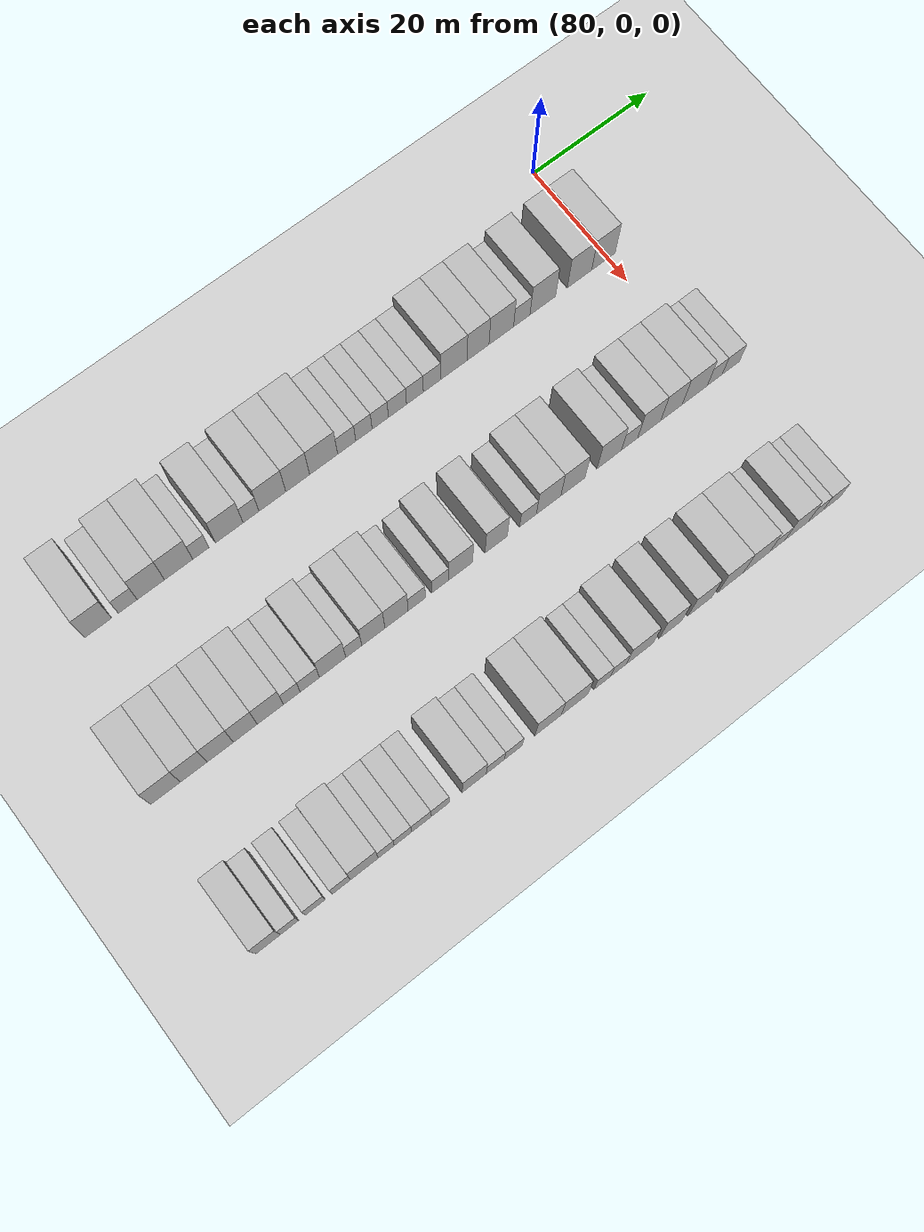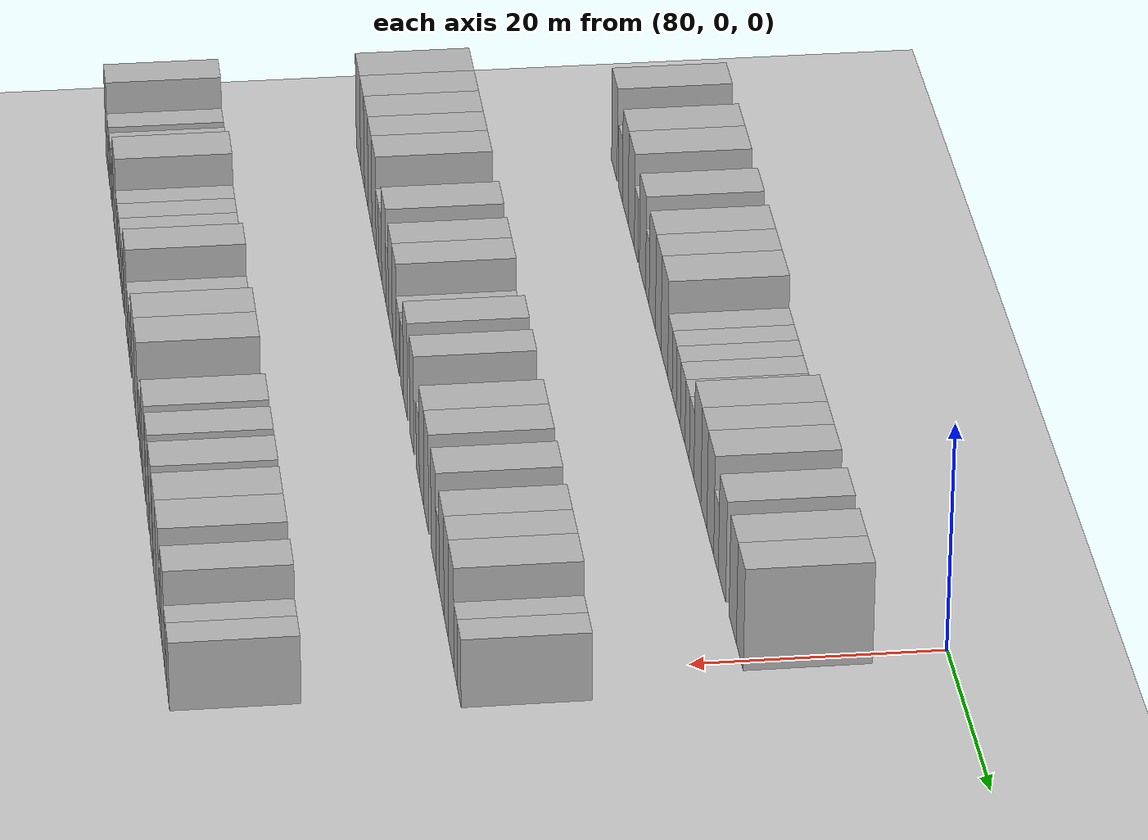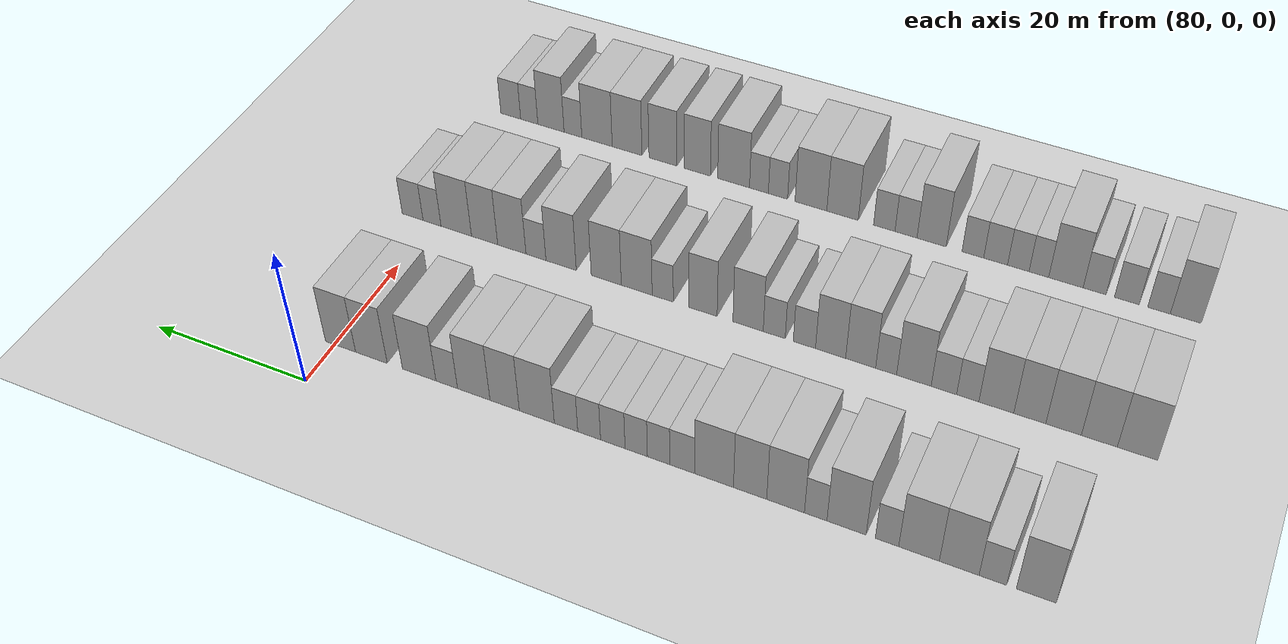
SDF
<sdf version="1.6">
 <world name="default">
  <include>
   <name>ground_plane_2</name>
   <uri>model://HANNAS_ground_plane</uri>
   <pose>100 0 0  0 0 0</pose>
  </include>
  <model name="building_660">
   <static>1</static>
   <pose>91.0000 -82.4379 0 0.000000 0.000000 0.000000</pose>
   <link name="link">
    <pose>0 0 4.50 0 0 0</pose>
    <collision name="collision"><geometry><box><size>10.0000 4.1083 9.0000</size></box></geometry></collision>
    <visual name="visual">
     <cast_shadows>0</cast_shadows>
     <geometry><box><size>10.0000 4.1083 9.0000</size></box></geometry>
     <material>
      <script>
       <uri>model://HANNAS_wall/materials/scripts</uri>
       <uri>model://HANNAS_wall/materials/textures</uri>
       <name>vrc/HANNAS_wall</name>
      </script>
     </material>
    </visual>
   </link>
  </model>
  <model name="building_661">
   <static>1</static>
   <pose>91.0000 -77.9443 0 0.000000 0.000000 0.000000</pose>
   <link name="link">
    <pose>0 0 3.00 0 0 0</pose>
    <collision name="collision"><geometry><box><size>10.0000 2.8788 6.0000</size></box></geometry></collision>
    <visual name="visual">
     <cast_shadows>0</cast_shadows>
     <geometry><box><size>10.0000 2.8788 6.0000</size></box></geometry>
     <material>
      <script>
       <uri>model://HANNAS_wall/materials/scripts</uri>
       <uri>model://HANNAS_wall/materials/textures</uri>
       <name>vrc/HANNAS_wall</name>
      </script>
     </material>
    </visual>
   </link>
  </model>
  <model name="building_662">
   <static>1</static>
   <pose>91.0000 -74.4067 0 0.000000 0.000000 0.000000</pose>
   <link name="link">
    <pose>0 0 4.50 0 0 0</pose>
    <collision name="collision"><geometry><box><size>10.0000 4.1963 9.0000</size></box></geometry></collision>
    <visual name="visual">
     <cast_shadows>0</cast_shadows>
     <geometry><box><size>10.0000 4.1963 9.0000</size></box></geometry>
     <material>
      <script>
       <uri>model://HANNAS_wall/materials/scripts</uri>
       <uri>model://HANNAS_wall/materials/textures</uri>
       <name>vrc/HANNAS_wall</name>
      </script>
     </material>
    </visual>
   </link>
  </model>
  <model name="building_663">
   <static>1</static>
   <pose>91.0000 -70.1316 0 0.000000 0.000000 0.000000</pose>
   <link name="link">
    <pose>0 0 4.50 0 0 0</pose>
    <collision name="collision"><geometry><box><size>10.0000 4.3540 9.0000</size></box></geometry></collision>
    <visual name="visual">
     <cast_shadows>0</cast_shadows>
     <geometry><box><size>10.0000 4.3540 9.0000</size></box></geometry>
     <material>
      <script>
       <uri>model://HANNAS_wall/materials/scripts</uri>
       <uri>model://HANNAS_wall/materials/textures</uri>
       <name>vrc/HANNAS_wall</name>
      </script>
     </material>
    </visual>
   </link>
  </model>
  <model name="building_664">
   <static>1</static>
   <pose>91.0000 -66.6855 0 0.000000 0.000000 0.000000</pose>
   <link name="link">
    <pose>0 0 3.00 0 0 0</pose>
    <collision name="collision"><geometry><box><size>10.0000 2.5382 6.0000</size></box></geometry></collision>
    <visual name="visual">
     <cast_shadows>0</cast_shadows>
     <geometry><box><size>10.0000 2.5382 6.0000</size></box></geometry>
     <material>
      <script>
       <uri>model://HANNAS_wall/materials/scripts</uri>
       <uri>model://HANNAS_wall/materials/textures</uri>
       <name>vrc/HANNAS_wall</name>
      </script>
     </material>
    </visual>
   </link>
  </model>
  <model name="building_665">
   <static>1</static>
   <pose>91.0000 -62.2588 0 0.000000 0.000000 0.000000</pose>
   <link name="link">
    <pose>0 0 4.50 0 0 0</pose>
    <collision name="collision"><geometry><box><size>10.0000 4.3152 9.0000</size></box></geometry></collision>
    <visual name="visual">
     <cast_shadows>0</cast_shadows>
     <geometry><box><size>10.0000 4.3152 9.0000</size></box></geometry>
     <material>
      <script>
       <uri>model://HANNAS_wall/materials/scripts</uri>
       <uri>model://HANNAS_wall/materials/textures</uri>
       <name>vrc/HANNAS_wall</name>
      </script>
     </material>
    </visual>
   </link>
  </model>
  <model name="building_666">
   <static>1</static>
   <pose>91.0000 -58.8487 0 0.000000 0.000000 0.000000</pose>
   <link name="link">
    <pose>0 0 3.00 0 0 0</pose>
    <collision name="collision"><geometry><box><size>10.0000 2.5052 6.0000</size></box></geometry></collision>
    <visual name="visual">
     <cast_shadows>0</cast_shadows>
     <geometry><box><size>10.0000 2.5052 6.0000</size></box></geometry>
     <material>
      <script>
       <uri>model://HANNAS_wall/materials/scripts</uri>
       <uri>model://HANNAS_wall/materials/textures</uri>
       <name>vrc/HANNAS_wall</name>
      </script>
     </material>
    </visual>
   </link>
  </model>
  <model name="building_667">
   <static>1</static>
   <pose>91.0000 -55.4693 0 0.000000 0.000000 0.000000</pose>
   <link name="link">
    <pose>0 0 4.50 0 0 0</pose>
    <collision name="collision"><geometry><box><size>10.0000 4.2535 9.0000</size></box></geometry></collision>
    <visual name="visual">
     <cast_shadows>0</cast_shadows>
     <geometry><box><size>10.0000 4.2535 9.0000</size></box></geometry>
     <material>
      <script>
       <uri>model://HANNAS_wall/materials/scripts</uri>
       <uri>model://HANNAS_wall/materials/textures</uri>
       <name>vrc/HANNAS_wall</name>
      </script>
     </material>
    </visual>
   </link>
  </model>
  <model name="building_668">
   <static>1</static>
   <pose>91.0000 -51.4453 0 0.000000 0.000000 0.000000</pose>
   <link name="link">
    <pose>0 0 4.50 0 0 0</pose>
    <collision name="collision"><geometry><box><size>10.0000 3.7946 9.0000</size></box></geometry></collision>
    <visual name="visual">
     <cast_shadows>0</cast_shadows>
     <geometry><box><size>10.0000 3.7946 9.0000</size></box></geometry>
     <material>
      <script>
       <uri>model://HANNAS_wall/materials/scripts</uri>
       <uri>model://HANNAS_wall/materials/textures</uri>
       <name>vrc/HANNAS_wall</name>
      </script>
     </material>
    </visual>
   </link>
  </model>
  <model name="building_669">
   <static>1</static>
   <pose>91.0000 -47.3086 0 0.000000 0.000000 0.000000</pose>
   <link name="link">
    <pose>0 0 4.50 0 0 0</pose>
    <collision name="collision"><geometry><box><size>10.0000 4.4787 9.0000</size></box></geometry></collision>
    <visual name="visual">
     <cast_shadows>0</cast_shadows>
     <geometry><box><size>10.0000 4.4787 9.0000</size></box></geometry>
     <material>
      <script>
       <uri>model://HANNAS_wall/materials/scripts</uri>
       <uri>model://HANNAS_wall/materials/textures</uri>
       <name>vrc/HANNAS_wall</name>
      </script>
     </material>
    </visual>
   </link>
  </model>
  <model name="building_670">
   <static>1</static>
   <pose>91.0000 -43.6029 0 0.000000 0.000000 0.000000</pose>
   <link name="link">
    <pose>0 0 3.00 0 0 0</pose>
    <collision name="collision"><geometry><box><size>10.0000 2.9329 6.0000</size></box></geometry></collision>
    <visual name="visual">
     <cast_shadows>0</cast_shadows>
     <geometry><box><size>10.0000 2.9329 6.0000</size></box></geometry>
     <material>
      <script>
       <uri>model://HANNAS_wall/materials/scripts</uri>
       <uri>model://HANNAS_wall/materials/textures</uri>
       <name>vrc/HANNAS_wall</name>
      </script>
     </material>
    </visual>
   </link>
  </model>
  <model name="building_671">
   <static>1</static>
   <pose>91.0000 -40.8184 0 0.000000 0.000000 0.000000</pose>
   <link name="link">
    <pose>0 0 3.00 0 0 0</pose>
    <collision name="collision"><geometry><box><size>10.0000 2.6360 6.0000</size></box></geometry></collision>
    <visual name="visual">
     <cast_shadows>0</cast_shadows>
     <geometry><box><size>10.0000 2.6360 6.0000</size></box></geometry>
     <material>
      <script>
       <uri>model://HANNAS_wall/materials/scripts</uri>
       <uri>model://HANNAS_wall/materials/textures</uri>
       <name>vrc/HANNAS_wall</name>
      </script>
     </material>
    </visual>
   </link>
  </model>
  <model name="building_672">
   <static>1</static>
   <pose>91.0000 -38.1705 0 0.000000 0.000000 0.000000</pose>
   <link name="link">
    <pose>0 0 3.00 0 0 0</pose>
    <collision name="collision"><geometry><box><size>10.0000 2.6597 6.0000</size></box></geometry></collision>
    <visual name="visual">
     <cast_shadows>0</cast_shadows>
     <geometry><box><size>10.0000 2.6597 6.0000</size></box></geometry>
     <material>
      <script>
       <uri>model://HANNAS_wall/materials/scripts</uri>
       <uri>model://HANNAS_wall/materials/textures</uri>
       <name>vrc/HANNAS_wall</name>
      </script>
     </material>
    </visual>
   </link>
  </model>
  <model name="building_673">
   <static>1</static>
   <pose>91.0000 -35.3670 0 0.000000 0.000000 0.000000</pose>
   <link name="link">
    <pose>0 0 3.00 0 0 0</pose>
    <collision name="collision"><geometry><box><size>10.0000 2.9472 6.0000</size></box></geometry></collision>
    <visual name="visual">
     <cast_shadows>0</cast_shadows>
     <geometry><box><size>10.0000 2.9472 6.0000</size></box></geometry>
     <material>
      <script>
       <uri>model://HANNAS_wall/materials/scripts</uri>
       <uri>model://HANNAS_wall/materials/textures</uri>
       <name>vrc/HANNAS_wall</name>
      </script>
     </material>
    </visual>
   </link>
  </model>
  <model name="building_674">
   <static>1</static>
   <pose>91.0000 -32.5090 0 0.000000 0.000000 0.000000</pose>
   <link name="link">
    <pose>0 0 3.00 0 0 0</pose>
    <collision name="collision"><geometry><box><size>10.0000 2.7688 6.0000</size></box></geometry></collision>
    <visual name="visual">
     <cast_shadows>0</cast_shadows>
     <geometry><box><size>10.0000 2.7688 6.0000</size></box></geometry>
     <material>
      <script>
       <uri>model://HANNAS_wall/materials/scripts</uri>
       <uri>model://HANNAS_wall/materials/textures</uri>
       <name>vrc/HANNAS_wall</name>
      </script>
     </material>
    </visual>
   </link>
  </model>
  <model name="building_675">
   <static>1</static>
   <pose>91.0000 -29.6862 0 0.000000 0.000000 0.000000</pose>
   <link name="link">
    <pose>0 0 3.00 0 0 0</pose>
    <collision name="collision"><geometry><box><size>10.0000 2.8769 6.0000</size></box></geometry></collision>
    <visual name="visual">
     <cast_shadows>0</cast_shadows>
     <geometry><box><size>10.0000 2.8769 6.0000</size></box></geometry>
     <material>
      <script>
       <uri>model://HANNAS_wall/materials/scripts</uri>
       <uri>model://HANNAS_wall/materials/textures</uri>
       <name>vrc/HANNAS_wall</name>
      </script>
     </material>
    </visual>
   </link>
  </model>
  <model name="building_676">
   <static>1</static>
   <pose>91.0000 -26.0769 0 0.000000 0.000000 0.000000</pose>
   <link name="link">
    <pose>0 0 4.50 0 0 0</pose>
    <collision name="collision"><geometry><box><size>10.0000 4.3416 9.0000</size></box></geometry></collision>
    <visual name="visual">
     <cast_shadows>0</cast_shadows>
     <geometry><box><size>10.0000 4.3416 9.0000</size></box></geometry>
     <material>
      <script>
       <uri>model://HANNAS_wall/materials/scripts</uri>
       <uri>model://HANNAS_wall/materials/textures</uri>
       <name>vrc/HANNAS_wall</name>
      </script>
     </material>
    </visual>
   </link>
  </model>
  <model name="building_677">
   <static>1</static>
   <pose>91.0000 -22.0650 0 0.000000 0.000000 0.000000</pose>
   <link name="link">
    <pose>0 0 4.50 0 0 0</pose>
    <collision name="collision"><geometry><box><size>10.0000 3.6822 9.0000</size></box></geometry></collision>
    <visual name="visual">
     <cast_shadows>0</cast_shadows>
     <geometry><box><size>10.0000 3.6822 9.0000</size></box></geometry>
     <material>
      <script>
       <uri>model://HANNAS_wall/materials/scripts</uri>
       <uri>model://HANNAS_wall/materials/textures</uri>
       <name>vrc/HANNAS_wall</name>
      </script>
     </material>
    </visual>
   </link>
  </model>
  <model name="building_678">
   <static>1</static>
   <pose>91.0000 -18.1589 0 0.000000 0.000000 0.000000</pose>
   <link name="link">
    <pose>0 0 4.50 0 0 0</pose>
    <collision name="collision"><geometry><box><size>10.0000 4.1301 9.0000</size></box></geometry></collision>
    <visual name="visual">
     <cast_shadows>0</cast_shadows>
     <geometry><box><size>10.0000 4.1301 9.0000</size></box></geometry>
     <material>
      <script>
       <uri>model://HANNAS_wall/materials/scripts</uri>
       <uri>model://HANNAS_wall/materials/textures</uri>
       <name>vrc/HANNAS_wall</name>
      </script>
     </material>
    </visual>
   </link>
  </model>
  <model name="building_679">
   <static>1</static>
   <pose>91.0000 -14.7062 0 0.000000 0.000000 0.000000</pose>
   <link name="link">
    <pose>0 0 3.00 0 0 0</pose>
    <collision name="collision"><geometry><box><size>10.0000 2.7753 6.0000</size></box></geometry></collision>
    <visual name="visual">
     <cast_shadows>0</cast_shadows>
     <geometry><box><size>10.0000 2.7753 6.0000</size></box></geometry>
     <material>
      <script>
       <uri>model://HANNAS_wall/materials/scripts</uri>
       <uri>model://HANNAS_wall/materials/textures</uri>
       <name>vrc/HANNAS_wall</name>
      </script>
     </material>
    </visual>
   </link>
  </model>
  <model name="building_680">
   <static>1</static>
   <pose>91.0000 -11.1399 0 0.000000 0.000000 0.000000</pose>
   <link name="link">
    <pose>0 0 4.50 0 0 0</pose>
    <collision name="collision"><geometry><box><size>10.0000 4.3572 9.0000</size></box></geometry></collision>
    <visual name="visual">
     <cast_shadows>0</cast_shadows>
     <geometry><box><size>10.0000 4.3572 9.0000</size></box></geometry>
     <material>
      <script>
       <uri>model://HANNAS_wall/materials/scripts</uri>
       <uri>model://HANNAS_wall/materials/textures</uri>
       <name>vrc/HANNAS_wall</name>
      </script>
     </material>
    </visual>
   </link>
  </model>
  <model name="building_681">
   <static>1</static>
   <pose>91.0000 -4.8677 0 0.000000 0.000000 0.000000</pose>
   <link name="link">
    <pose>0 0 4.50 0 0 0</pose>
    <collision name="collision"><geometry><box><size>10.0000 4.1872 9.0000</size></box></geometry></collision>
    <visual name="visual">
     <cast_shadows>0</cast_shadows>
     <geometry><box><size>10.0000 4.1872 9.0000</size></box></geometry>
     <material>
      <script>
       <uri>model://HANNAS_wall/materials/scripts</uri>
       <uri>model://HANNAS_wall/materials/textures</uri>
       <name>vrc/HANNAS_wall</name>
      </script>
     </material>
    </visual>
   </link>
  </model>
  <model name="building_682">
   <static>1</static>
   <pose>91.0000 -0.7569 0 0.000000 0.000000 0.000000</pose>
   <link name="link">
    <pose>0 0 4.50 0 0 0</pose>
    <collision name="collision"><geometry><box><size>10.0000 4.0345 9.0000</size></box></geometry></collision>
    <visual name="visual">
     <cast_shadows>0</cast_shadows>
     <geometry><box><size>10.0000 4.0345 9.0000</size></box></geometry>
     <material>
      <script>
       <uri>model://HANNAS_wall/materials/scripts</uri>
       <uri>model://HANNAS_wall/materials/textures</uri>
       <name>vrc/HANNAS_wall</name>
      </script>
     </material>
    </visual>
   </link>
  </model>
  <model name="building_863">
   <static>1</static>
   <pose>113.0000 -87.5095 0 0.000000 0.000000 0.000000</pose>
   <link name="link">
    <pose>0 0 4.50 0 0 0</pose>
    <collision name="collision"><geometry><box><size>10.0000 4.3921 9.0000</size></box></geometry></collision>
    <visual name="visual">
     <cast_shadows>0</cast_shadows>
     <geometry><box><size>10.0000 4.3921 9.0000</size></box></geometry>
     <material>
      <script>
       <uri>model://HANNAS_wall/materials/scripts</uri>
       <uri>model://HANNAS_wall/materials/textures</uri>
       <name>vrc/HANNAS_wall</name>
      </script>
     </material>
    </visual>
   </link>
  </model>
  <model name="building_864">
   <static>1</static>
   <pose>113.0000 -83.3325 0 0.000000 0.000000 0.000000</pose>
   <link name="link">
    <pose>0 0 4.50 0 0 0</pose>
    <collision name="collision"><geometry><box><size>10.0000 3.9621 9.0000</size></box></geometry></collision>
    <visual name="visual">
     <cast_shadows>0</cast_shadows>
     <geometry><box><size>10.0000 3.9621 9.0000</size></box></geometry>
     <material>
      <script>
       <uri>model://HANNAS_wall/materials/scripts</uri>
       <uri>model://HANNAS_wall/materials/textures</uri>
       <name>vrc/HANNAS_wall</name>
      </script>
     </material>
    </visual>
   </link>
  </model>
  <model name="building_865">
   <static>1</static>
   <pose>113.0000 -79.3720 0 0.000000 0.000000 0.000000</pose>
   <link name="link">
    <pose>0 0 4.50 0 0 0</pose>
    <collision name="collision"><geometry><box><size>10.0000 3.9588 9.0000</size></box></geometry></collision>
    <visual name="visual">
     <cast_shadows>0</cast_shadows>
     <geometry><box><size>10.0000 3.9588 9.0000</size></box></geometry>
     <material>
      <script>
       <uri>model://HANNAS_wall/materials/scripts</uri>
       <uri>model://HANNAS_wall/materials/textures</uri>
       <name>vrc/HANNAS_wall</name>
      </script>
     </material>
    </visual>
   </link>
  </model>
  <model name="building_866">
   <static>1</static>
   <pose>113.0000 -75.5803 0 0.000000 0.000000 0.000000</pose>
   <link name="link">
    <pose>0 0 4.50 0 0 0</pose>
    <collision name="collision"><geometry><box><size>10.0000 3.6246 9.0000</size></box></geometry></collision>
    <visual name="visual">
     <cast_shadows>0</cast_shadows>
     <geometry><box><size>10.0000 3.6246 9.0000</size></box></geometry>
     <material>
      <script>
       <uri>model://HANNAS_wall/materials/scripts</uri>
       <uri>model://HANNAS_wall/materials/textures</uri>
       <name>vrc/HANNAS_wall</name>
      </script>
     </material>
    </visual>
   </link>
  </model>
  <model name="building_867">
   <static>1</static>
   <pose>113.0000 -71.7721 0 0.000000 0.000000 0.000000</pose>
   <link name="link">
    <pose>0 0 4.50 0 0 0</pose>
    <collision name="collision"><geometry><box><size>10.0000 3.9918 9.0000</size></box></geometry></collision>
    <visual name="visual">
     <cast_shadows>0</cast_shadows>
     <geometry><box><size>10.0000 3.9918 9.0000</size></box></geometry>
     <material>
      <script>
       <uri>model://HANNAS_wall/materials/scripts</uri>
       <uri>model://HANNAS_wall/materials/textures</uri>
       <name>vrc/HANNAS_wall</name>
      </script>
     </material>
    </visual>
   </link>
  </model>
  <model name="building_868">
   <static>1</static>
   <pose>113.0000 -68.4930 0 0.000000 0.000000 0.000000</pose>
   <link name="link">
    <pose>0 0 3.00 0 0 0</pose>
    <collision name="collision"><geometry><box><size>10.0000 2.5664 6.0000</size></box></geometry></collision>
    <visual name="visual">
     <cast_shadows>0</cast_shadows>
     <geometry><box><size>10.0000 2.5664 6.0000</size></box></geometry>
     <material>
      <script>
       <uri>model://HANNAS_wall/materials/scripts</uri>
       <uri>model://HANNAS_wall/materials/textures</uri>
       <name>vrc/HANNAS_wall</name>
      </script>
     </material>
    </visual>
   </link>
  </model>
  <model name="building_869">
   <static>1</static>
   <pose>113.0000 -65.7277 0 0.000000 0.000000 0.000000</pose>
   <link name="link">
    <pose>0 0 3.00 0 0 0</pose>
    <collision name="collision"><geometry><box><size>10.0000 2.9643 6.0000</size></box></geometry></collision>
    <visual name="visual">
     <cast_shadows>0</cast_shadows>
     <geometry><box><size>10.0000 2.9643 6.0000</size></box></geometry>
     <material>
      <script>
       <uri>model://HANNAS_wall/materials/scripts</uri>
       <uri>model://HANNAS_wall/materials/textures</uri>
       <name>vrc/HANNAS_wall</name>
      </script>
     </material>
    </visual>
   </link>
  </model>
  <model name="building_870">
   <static>1</static>
   <pose>113.0000 -62.2053 0 0.000000 0.000000 0.000000</pose>
   <link name="link">
    <pose>0 0 4.50 0 0 0</pose>
    <collision name="collision"><geometry><box><size>10.0000 4.0804 9.0000</size></box></geometry></collision>
    <visual name="visual">
     <cast_shadows>0</cast_shadows>
     <geometry><box><size>10.0000 4.0804 9.0000</size></box></geometry>
     <material>
      <script>
       <uri>model://HANNAS_wall/materials/scripts</uri>
       <uri>model://HANNAS_wall/materials/textures</uri>
       <name>vrc/HANNAS_wall</name>
      </script>
     </material>
    </visual>
   </link>
  </model>
  <model name="building_871">
   <static>1</static>
   <pose>113.0000 -58.9231 0 0.000000 0.000000 0.000000</pose>
   <link name="link">
    <pose>0 0 3.00 0 0 0</pose>
    <collision name="collision"><geometry><box><size>10.0000 2.4841 6.0000</size></box></geometry></collision>
    <visual name="visual">
     <cast_shadows>0</cast_shadows>
     <geometry><box><size>10.0000 2.4841 6.0000</size></box></geometry>
     <material>
      <script>
       <uri>model://HANNAS_wall/materials/scripts</uri>
       <uri>model://HANNAS_wall/materials/textures</uri>
       <name>vrc/HANNAS_wall</name>
      </script>
     </material>
    </visual>
   </link>
  </model>
  <model name="building_872">
   <static>1</static>
   <pose>113.0000 -55.8783 0 0.000000 0.000000 0.000000</pose>
   <link name="link">
    <pose>0 0 4.50 0 0 0</pose>
    <collision name="collision"><geometry><box><size>10.0000 3.6055 9.0000</size></box></geometry></collision>
    <visual name="visual">
     <cast_shadows>0</cast_shadows>
     <geometry><box><size>10.0000 3.6055 9.0000</size></box></geometry>
     <material>
      <script>
       <uri>model://HANNAS_wall/materials/scripts</uri>
       <uri>model://HANNAS_wall/materials/textures</uri>
       <name>vrc/HANNAS_wall</name>
      </script>
     </material>
    </visual>
   </link>
  </model>
  <model name="building_873">
   <static>1</static>
   <pose>113.0000 -52.2427 0 0.000000 0.000000 0.000000</pose>
   <link name="link">
    <pose>0 0 4.50 0 0 0</pose>
    <collision name="collision"><geometry><box><size>10.0000 3.6655 9.0000</size></box></geometry></collision>
    <visual name="visual">
     <cast_shadows>0</cast_shadows>
     <geometry><box><size>10.0000 3.6655 9.0000</size></box></geometry>
     <material>
      <script>
       <uri>model://HANNAS_wall/materials/scripts</uri>
       <uri>model://HANNAS_wall/materials/textures</uri>
       <name>vrc/HANNAS_wall</name>
      </script>
     </material>
    </visual>
   </link>
  </model>
  <model name="building_874">
   <static>1</static>
   <pose>113.0000 -49.0480 0 0.000000 0.000000 0.000000</pose>
   <link name="link">
    <pose>0 0 3.00 0 0 0</pose>
    <collision name="collision"><geometry><box><size>10.0000 2.7240 6.0000</size></box></geometry></collision>
    <visual name="visual">
     <cast_shadows>0</cast_shadows>
     <geometry><box><size>10.0000 2.7240 6.0000</size></box></geometry>
     <material>
      <script>
       <uri>model://HANNAS_wall/materials/scripts</uri>
       <uri>model://HANNAS_wall/materials/textures</uri>
       <name>vrc/HANNAS_wall</name>
      </script>
     </material>
    </visual>
   </link>
  </model>
  <model name="building_875">
   <static>1</static>
   <pose>113.0000 -45.3250 0 0.000000 0.000000 0.000000</pose>
   <link name="link">
    <pose>0 0 3.00 0 0 0</pose>
    <collision name="collision"><geometry><box><size>10.0000 2.7219 6.0000</size></box></geometry></collision>
    <visual name="visual">
     <cast_shadows>0</cast_shadows>
     <geometry><box><size>10.0000 2.7219 6.0000</size></box></geometry>
     <material>
      <script>
       <uri>model://HANNAS_wall/materials/scripts</uri>
       <uri>model://HANNAS_wall/materials/textures</uri>
       <name>vrc/HANNAS_wall</name>
      </script>
     </material>
    </visual>
   </link>
  </model>
  <model name="building_876">
   <static>1</static>
   <pose>113.0000 -42.0652 0 0.000000 0.000000 0.000000</pose>
   <link name="link">
    <pose>0 0 4.50 0 0 0</pose>
    <collision name="collision"><geometry><box><size>10.0000 3.7977 9.0000</size></box></geometry></collision>
    <visual name="visual">
     <cast_shadows>0</cast_shadows>
     <geometry><box><size>10.0000 3.7977 9.0000</size></box></geometry>
     <material>
      <script>
       <uri>model://HANNAS_wall/materials/scripts</uri>
       <uri>model://HANNAS_wall/materials/textures</uri>
       <name>vrc/HANNAS_wall</name>
      </script>
     </material>
    </visual>
   </link>
  </model>
  <model name="building_877">
   <static>1</static>
   <pose>113.0000 -36.3658 0 0.000000 0.000000 0.000000</pose>
   <link name="link">
    <pose>0 0 4.50 0 0 0</pose>
    <collision name="collision"><geometry><box><size>10.0000 3.6011 9.0000</size></box></geometry></collision>
    <visual name="visual">
     <cast_shadows>0</cast_shadows>
     <geometry><box><size>10.0000 3.6011 9.0000</size></box></geometry>
     <material>
      <script>
       <uri>model://HANNAS_wall/materials/scripts</uri>
       <uri>model://HANNAS_wall/materials/textures</uri>
       <name>vrc/HANNAS_wall</name>
      </script>
     </material>
    </visual>
   </link>
  </model>
  <model name="building_878">
   <static>1</static>
   <pose>113.0000 -31.1975 0 0.000000 0.000000 0.000000</pose>
   <link name="link">
    <pose>0 0 3.00 0 0 0</pose>
    <collision name="collision"><geometry><box><size>10.0000 2.7355 6.0000</size></box></geometry></collision>
    <visual name="visual">
     <cast_shadows>0</cast_shadows>
     <geometry><box><size>10.0000 2.7355 6.0000</size></box></geometry>
     <material>
      <script>
       <uri>model://HANNAS_wall/materials/scripts</uri>
       <uri>model://HANNAS_wall/materials/textures</uri>
       <name>vrc/HANNAS_wall</name>
      </script>
     </material>
    </visual>
   </link>
  </model>
  <model name="building_879">
   <static>1</static>
   <pose>113.0000 -27.8122 0 0.000000 0.000000 0.000000</pose>
   <link name="link">
    <pose>0 0 4.50 0 0 0</pose>
    <collision name="collision"><geometry><box><size>10.0000 4.0353 9.0000</size></box></geometry></collision>
    <visual name="visual">
     <cast_shadows>0</cast_shadows>
     <geometry><box><size>10.0000 4.0353 9.0000</size></box></geometry>
     <material>
      <script>
       <uri>model://HANNAS_wall/materials/scripts</uri>
       <uri>model://HANNAS_wall/materials/textures</uri>
       <name>vrc/HANNAS_wall</name>
      </script>
     </material>
    </visual>
   </link>
  </model>
  <model name="building_880">
   <static>1</static>
   <pose>113.0000 -23.8072 0 0.000000 0.000000 0.000000</pose>
   <link name="link">
    <pose>0 0 4.50 0 0 0</pose>
    <collision name="collision"><geometry><box><size>10.0000 3.9747 9.0000</size></box></geometry></collision>
    <visual name="visual">
     <cast_shadows>0</cast_shadows>
     <geometry><box><size>10.0000 3.9747 9.0000</size></box></geometry>
     <material>
      <script>
       <uri>model://HANNAS_wall/materials/scripts</uri>
       <uri>model://HANNAS_wall/materials/textures</uri>
       <name>vrc/HANNAS_wall</name>
      </script>
     </material>
    </visual>
   </link>
  </model>
  <model name="building_881">
   <static>1</static>
   <pose>113.0000 -17.7786 0 0.000000 0.000000 0.000000</pose>
   <link name="link">
    <pose>0 0 4.50 0 0 0</pose>
    <collision name="collision"><geometry><box><size>10.0000 4.0825 9.0000</size></box></geometry></collision>
    <visual name="visual">
     <cast_shadows>0</cast_shadows>
     <geometry><box><size>10.0000 4.0825 9.0000</size></box></geometry>
     <material>
      <script>
       <uri>model://HANNAS_wall/materials/scripts</uri>
       <uri>model://HANNAS_wall/materials/textures</uri>
       <name>vrc/HANNAS_wall</name>
      </script>
     </material>
    </visual>
   </link>
  </model>
  <model name="building_882">
   <static>1</static>
   <pose>113.0000 -14.3794 0 0.000000 0.000000 0.000000</pose>
   <link name="link">
    <pose>0 0 3.00 0 0 0</pose>
    <collision name="collision"><geometry><box><size>10.0000 2.7159 6.0000</size></box></geometry></collision>
    <visual name="visual">
     <cast_shadows>0</cast_shadows>
     <geometry><box><size>10.0000 2.7159 6.0000</size></box></geometry>
     <material>
      <script>
       <uri>model://HANNAS_wall/materials/scripts</uri>
       <uri>model://HANNAS_wall/materials/textures</uri>
       <name>vrc/HANNAS_wall</name>
      </script>
     </material>
    </visual>
   </link>
  </model>
  <model name="building_883">
   <static>1</static>
   <pose>113.0000 -11.0781 0 0.000000 0.000000 0.000000</pose>
   <link name="link">
    <pose>0 0 4.50 0 0 0</pose>
    <collision name="collision"><geometry><box><size>10.0000 3.8867 9.0000</size></box></geometry></collision>
    <visual name="visual">
     <cast_shadows>0</cast_shadows>
     <geometry><box><size>10.0000 3.8867 9.0000</size></box></geometry>
     <material>
      <script>
       <uri>model://HANNAS_wall/materials/scripts</uri>
       <uri>model://HANNAS_wall/materials/textures</uri>
       <name>vrc/HANNAS_wall</name>
      </script>
     </material>
    </visual>
   </link>
  </model>
  <model name="building_884">
   <static>1</static>
   <pose>113.0000 -7.3175 0 0.000000 0.000000 0.000000</pose>
   <link name="link">
    <pose>0 0 4.50 0 0 0</pose>
    <collision name="collision"><geometry><box><size>10.0000 3.6345 9.0000</size></box></geometry></collision>
    <visual name="visual">
     <cast_shadows>0</cast_shadows>
     <geometry><box><size>10.0000 3.6345 9.0000</size></box></geometry>
     <material>
      <script>
       <uri>model://HANNAS_wall/materials/scripts</uri>
       <uri>model://HANNAS_wall/materials/textures</uri>
       <name>vrc/HANNAS_wall</name>
      </script>
     </material>
    </visual>
   </link>
  </model>
  <model name="building_885">
   <static>1</static>
   <pose>113.0000 -3.3599 0 0.000000 0.000000 0.000000</pose>
   <link name="link">
    <pose>0 0 4.50 0 0 0</pose>
    <collision name="collision"><geometry><box><size>10.0000 4.2806 9.0000</size></box></geometry></collision>
    <visual name="visual">
     <cast_shadows>0</cast_shadows>
     <geometry><box><size>10.0000 4.2806 9.0000</size></box></geometry>
     <material>
      <script>
       <uri>model://HANNAS_wall/materials/scripts</uri>
       <uri>model://HANNAS_wall/materials/textures</uri>
       <name>vrc/HANNAS_wall</name>
      </script>
     </material>
    </visual>
   </link>
  </model>
  <model name="building_886">
   <static>1</static>
   <pose>113.0000 0.0585 0 0.000000 0.000000 0.000000</pose>
   <link name="link">
    <pose>0 0 3.00 0 0 0</pose>
    <collision name="collision"><geometry><box><size>10.0000 2.5562 6.0000</size></box></geometry></collision>
    <visual name="visual">
     <cast_shadows>0</cast_shadows>
     <geometry><box><size>10.0000 2.5562 6.0000</size></box></geometry>
     <material>
      <script>
       <uri>model://HANNAS_wall/materials/scripts</uri>
       <uri>model://HANNAS_wall/materials/textures</uri>
       <name>vrc/HANNAS_wall</name>
      </script>
     </material>
    </visual>
   </link>
  </model>
  <model name="building_887">
   <static>1</static>
   <pose>113.0000 2.8245 0 0.000000 0.000000 0.000000</pose>
   <link name="link">
    <pose>0 0 3.00 0 0 0</pose>
    <collision name="collision"><geometry><box><size>10.0000 2.9759 6.0000</size></box></geometry></collision>
    <visual name="visual">
     <cast_shadows>0</cast_shadows>
     <geometry><box><size>10.0000 2.9759 6.0000</size></box></geometry>
     <material>
      <script>
       <uri>model://HANNAS_wall/materials/scripts</uri>
       <uri>model://HANNAS_wall/materials/textures</uri>
       <name>vrc/HANNAS_wall</name>
      </script>
     </material>
    </visual>
   </link>
  </model>
  <model name="building_1051">
   <static>1</static>
   <pose>135.0000 -88.0235 0 0.000000 0.000000 0.000000</pose>
   <link name="link">
    <pose>0 0 4.50 0 0 0</pose>
    <collision name="collision"><geometry><box><size>10.0000 3.6041 9.0000</size></box></geometry></collision>
    <visual name="visual">
     <cast_shadows>0</cast_shadows>
     <geometry><box><size>10.0000 3.6041 9.0000</size></box></geometry>
     <material>
      <script>
       <uri>model://HANNAS_wall/materials/scripts</uri>
       <uri>model://HANNAS_wall/materials/textures</uri>
       <name>vrc/HANNAS_wall</name>
      </script>
     </material>
    </visual>
   </link>
  </model>
  <model name="building_1052">
   <static>1</static>
   <pose>135.0000 -84.8962 0 0.000000 0.000000 0.000000</pose>
   <link name="link">
    <pose>0 0 3.00 0 0 0</pose>
    <collision name="collision"><geometry><box><size>10.0000 2.6505 6.0000</size></box></geometry></collision>
    <visual name="visual">
     <cast_shadows>0</cast_shadows>
     <geometry><box><size>10.0000 2.6505 6.0000</size></box></geometry>
     <material>
      <script>
       <uri>model://HANNAS_wall/materials/scripts</uri>
       <uri>model://HANNAS_wall/materials/textures</uri>
       <name>vrc/HANNAS_wall</name>
      </script>
     </material>
    </visual>
   </link>
  </model>
  <model name="building_1053">
   <static>1</static>
   <pose>135.0000 -81.0998 0 0.000000 0.000000 0.000000</pose>
   <link name="link">
    <pose>0 0 3.00 0 0 0</pose>
    <collision name="collision"><geometry><box><size>10.0000 2.9423 6.0000</size></box></geometry></collision>
    <visual name="visual">
     <cast_shadows>0</cast_shadows>
     <geometry><box><size>10.0000 2.9423 6.0000</size></box></geometry>
     <material>
      <script>
       <uri>model://HANNAS_wall/materials/scripts</uri>
       <uri>model://HANNAS_wall/materials/textures</uri>
       <name>vrc/HANNAS_wall</name>
      </script>
     </material>
    </visual>
   </link>
  </model>
  <model name="building_1054">
   <static>1</static>
   <pose>135.0000 -77.2553 0 0.000000 0.000000 0.000000</pose>
   <link name="link">
    <pose>0 0 3.00 0 0 0</pose>
    <collision name="collision"><geometry><box><size>10.0000 2.7467 6.0000</size></box></geometry></collision>
    <visual name="visual">
     <cast_shadows>0</cast_shadows>
     <geometry><box><size>10.0000 2.7467 6.0000</size></box></geometry>
     <material>
      <script>
       <uri>model://HANNAS_wall/materials/scripts</uri>
       <uri>model://HANNAS_wall/materials/textures</uri>
       <name>vrc/HANNAS_wall</name>
      </script>
     </material>
    </visual>
   </link>
  </model>
  <model name="building_1055">
   <static>1</static>
   <pose>135.0000 -73.7904 0 0.000000 0.000000 0.000000</pose>
   <link name="link">
    <pose>0 0 4.50 0 0 0</pose>
    <collision name="collision"><geometry><box><size>10.0000 4.1831 9.0000</size></box></geometry></collision>
    <visual name="visual">
     <cast_shadows>0</cast_shadows>
     <geometry><box><size>10.0000 4.1831 9.0000</size></box></geometry>
     <material>
      <script>
       <uri>model://HANNAS_wall/materials/scripts</uri>
       <uri>model://HANNAS_wall/materials/textures</uri>
       <name>vrc/HANNAS_wall</name>
      </script>
     </material>
    </visual>
   </link>
  </model>
  <model name="building_1056">
   <static>1</static>
   <pose>135.0000 -70.4968 0 0.000000 0.000000 0.000000</pose>
   <link name="link">
    <pose>0 0 3.00 0 0 0</pose>
    <collision name="collision"><geometry><box><size>10.0000 2.4042 6.0000</size></box></geometry></collision>
    <visual name="visual">
     <cast_shadows>0</cast_shadows>
     <geometry><box><size>10.0000 2.4042 6.0000</size></box></geometry>
     <material>
      <script>
       <uri>model://HANNAS_wall/materials/scripts</uri>
       <uri>model://HANNAS_wall/materials/textures</uri>
       <name>vrc/HANNAS_wall</name>
      </script>
     </material>
    </visual>
   </link>
  </model>
  <model name="building_1057">
   <static>1</static>
   <pose>135.0000 -67.9703 0 0.000000 0.000000 0.000000</pose>
   <link name="link">
    <pose>0 0 3.00 0 0 0</pose>
    <collision name="collision"><geometry><box><size>10.0000 2.6489 6.0000</size></box></geometry></collision>
    <visual name="visual">
     <cast_shadows>0</cast_shadows>
     <geometry><box><size>10.0000 2.6489 6.0000</size></box></geometry>
     <material>
      <script>
       <uri>model://HANNAS_wall/materials/scripts</uri>
       <uri>model://HANNAS_wall/materials/textures</uri>
       <name>vrc/HANNAS_wall</name>
      </script>
     </material>
    </visual>
   </link>
  </model>
  <model name="building_1058">
   <static>1</static>
   <pose>135.0000 -65.1583 0 0.000000 0.000000 0.000000</pose>
   <link name="link">
    <pose>0 0 3.00 0 0 0</pose>
    <collision name="collision"><geometry><box><size>10.0000 2.9750 6.0000</size></box></geometry></collision>
    <visual name="visual">
     <cast_shadows>0</cast_shadows>
     <geometry><box><size>10.0000 2.9750 6.0000</size></box></geometry>
     <material>
      <script>
       <uri>model://HANNAS_wall/materials/scripts</uri>
       <uri>model://HANNAS_wall/materials/textures</uri>
       <name>vrc/HANNAS_wall</name>
      </script>
     </material>
    </visual>
   </link>
  </model>
  <model name="building_1059">
   <static>1</static>
   <pose>135.0000 -62.3129 0 0.000000 0.000000 0.000000</pose>
   <link name="link">
    <pose>0 0 3.00 0 0 0</pose>
    <collision name="collision"><geometry><box><size>10.0000 2.7159 6.0000</size></box></geometry></collision>
    <visual name="visual">
     <cast_shadows>0</cast_shadows>
     <geometry><box><size>10.0000 2.7159 6.0000</size></box></geometry>
     <material>
      <script>
       <uri>model://HANNAS_wall/materials/scripts</uri>
       <uri>model://HANNAS_wall/materials/textures</uri>
       <name>vrc/HANNAS_wall</name>
      </script>
     </material>
    </visual>
   </link>
  </model>
  <model name="building_1060">
   <static>1</static>
   <pose>135.0000 -57.0984 0 0.000000 0.000000 0.000000</pose>
   <link name="link">
    <pose>0 0 4.50 0 0 0</pose>
    <collision name="collision"><geometry><box><size>10.0000 3.7132 9.0000</size></box></geometry></collision>
    <visual name="visual">
     <cast_shadows>0</cast_shadows>
     <geometry><box><size>10.0000 3.7132 9.0000</size></box></geometry>
     <material>
      <script>
       <uri>model://HANNAS_wall/materials/scripts</uri>
       <uri>model://HANNAS_wall/materials/textures</uri>
       <name>vrc/HANNAS_wall</name>
      </script>
     </material>
    </visual>
   </link>
  </model>
  <model name="building_1061">
   <static>1</static>
   <pose>135.0000 -53.8247 0 0.000000 0.000000 0.000000</pose>
   <link name="link">
    <pose>0 0 3.00 0 0 0</pose>
    <collision name="collision"><geometry><box><size>10.0000 2.8341 6.0000</size></box></geometry></collision>
    <visual name="visual">
     <cast_shadows>0</cast_shadows>
     <geometry><box><size>10.0000 2.8341 6.0000</size></box></geometry>
     <material>
      <script>
       <uri>model://HANNAS_wall/materials/scripts</uri>
       <uri>model://HANNAS_wall/materials/textures</uri>
       <name>vrc/HANNAS_wall</name>
      </script>
     </material>
    </visual>
   </link>
  </model>
  <model name="building_1062">
   <static>1</static>
   <pose>135.0000 -51.0210 0 0.000000 0.000000 0.000000</pose>
   <link name="link">
    <pose>0 0 3.00 0 0 0</pose>
    <collision name="collision"><geometry><box><size>10.0000 2.7733 6.0000</size></box></geometry></collision>
    <visual name="visual">
     <cast_shadows>0</cast_shadows>
     <geometry><box><size>10.0000 2.7733 6.0000</size></box></geometry>
     <material>
      <script>
       <uri>model://HANNAS_wall/materials/scripts</uri>
       <uri>model://HANNAS_wall/materials/textures</uri>
       <name>vrc/HANNAS_wall</name>
      </script>
     </material>
    </visual>
   </link>
  </model>
  <model name="building_1063">
   <static>1</static>
   <pose>135.0000 -45.5667 0 0.000000 0.000000 0.000000</pose>
   <link name="link">
    <pose>0 0 4.50 0 0 0</pose>
    <collision name="collision"><geometry><box><size>10.0000 4.1353 9.0000</size></box></geometry></collision>
    <visual name="visual">
     <cast_shadows>0</cast_shadows>
     <geometry><box><size>10.0000 4.1353 9.0000</size></box></geometry>
     <material>
      <script>
       <uri>model://HANNAS_wall/materials/scripts</uri>
       <uri>model://HANNAS_wall/materials/textures</uri>
       <name>vrc/HANNAS_wall</name>
      </script>
     </material>
    </visual>
   </link>
  </model>
  <model name="building_1064">
   <static>1</static>
   <pose>135.0000 -41.3810 0 0.000000 0.000000 0.000000</pose>
   <link name="link">
    <pose>0 0 4.50 0 0 0</pose>
    <collision name="collision"><geometry><box><size>10.0000 4.2362 9.0000</size></box></geometry></collision>
    <visual name="visual">
     <cast_shadows>0</cast_shadows>
     <geometry><box><size>10.0000 4.2362 9.0000</size></box></geometry>
     <material>
      <script>
       <uri>model://HANNAS_wall/materials/scripts</uri>
       <uri>model://HANNAS_wall/materials/textures</uri>
       <name>vrc/HANNAS_wall</name>
      </script>
     </material>
    </visual>
   </link>
  </model>
  <model name="building_1065">
   <static>1</static>
   <pose>135.0000 -36.9687 0 0.000000 0.000000 0.000000</pose>
   <link name="link">
    <pose>0 0 3.00 0 0 0</pose>
    <collision name="collision"><geometry><box><size>10.0000 2.5883 6.0000</size></box></geometry></collision>
    <visual name="visual">
     <cast_shadows>0</cast_shadows>
     <geometry><box><size>10.0000 2.5883 6.0000</size></box></geometry>
     <material>
      <script>
       <uri>model://HANNAS_wall/materials/scripts</uri>
       <uri>model://HANNAS_wall/materials/textures</uri>
       <name>vrc/HANNAS_wall</name>
      </script>
     </material>
    </visual>
   </link>
  </model>
  <model name="building_1066">
   <static>1</static>
   <pose>135.0000 -34.3946 0 0.000000 0.000000 0.000000</pose>
   <link name="link">
    <pose>0 0 3.00 0 0 0</pose>
    <collision name="collision"><geometry><box><size>10.0000 2.5600 6.0000</size></box></geometry></collision>
    <visual name="visual">
     <cast_shadows>0</cast_shadows>
     <geometry><box><size>10.0000 2.5600 6.0000</size></box></geometry>
     <material>
      <script>
       <uri>model://HANNAS_wall/materials/scripts</uri>
       <uri>model://HANNAS_wall/materials/textures</uri>
       <name>vrc/HANNAS_wall</name>
      </script>
     </material>
    </visual>
   </link>
  </model>
  <model name="building_1067">
   <static>1</static>
   <pose>135.0000 -30.9320 0 0.000000 0.000000 0.000000</pose>
   <link name="link">
    <pose>0 0 4.50 0 0 0</pose>
    <collision name="collision"><geometry><box><size>10.0000 4.3650 9.0000</size></box></geometry></collision>
    <visual name="visual">
     <cast_shadows>0</cast_shadows>
     <geometry><box><size>10.0000 4.3650 9.0000</size></box></geometry>
     <material>
      <script>
       <uri>model://HANNAS_wall/materials/scripts</uri>
       <uri>model://HANNAS_wall/materials/textures</uri>
       <name>vrc/HANNAS_wall</name>
      </script>
     </material>
    </visual>
   </link>
  </model>
  <model name="building_1068">
   <static>1</static>
   <pose>135.0000 -25.9152 0 0.000000 0.000000 0.000000</pose>
   <link name="link">
    <pose>0 0 4.50 0 0 0</pose>
    <collision name="collision"><geometry><box><size>10.0000 3.6688 9.0000</size></box></geometry></collision>
    <visual name="visual">
     <cast_shadows>0</cast_shadows>
     <geometry><box><size>10.0000 3.6688 9.0000</size></box></geometry>
     <material>
      <script>
       <uri>model://HANNAS_wall/materials/scripts</uri>
       <uri>model://HANNAS_wall/materials/textures</uri>
       <name>vrc/HANNAS_wall</name>
      </script>
     </material>
    </visual>
   </link>
  </model>
  <model name="building_1069">
   <static>1</static>
   <pose>135.0000 -21.1152 0 0.000000 0.000000 0.000000</pose>
   <link name="link">
    <pose>0 0 4.50 0 0 0</pose>
    <collision name="collision"><geometry><box><size>10.0000 3.9312 9.0000</size></box></geometry></collision>
    <visual name="visual">
     <cast_shadows>0</cast_shadows>
     <geometry><box><size>10.0000 3.9312 9.0000</size></box></geometry>
     <material>
      <script>
       <uri>model://HANNAS_wall/materials/scripts</uri>
       <uri>model://HANNAS_wall/materials/textures</uri>
       <name>vrc/HANNAS_wall</name>
      </script>
     </material>
    </visual>
   </link>
  </model>
  <model name="building_1070">
   <static>1</static>
   <pose>135.0000 -16.0274 0 0.000000 0.000000 0.000000</pose>
   <link name="link">
    <pose>0 0 4.50 0 0 0</pose>
    <collision name="collision"><geometry><box><size>10.0000 4.2444 9.0000</size></box></geometry></collision>
    <visual name="visual">
     <cast_shadows>0</cast_shadows>
     <geometry><box><size>10.0000 4.2444 9.0000</size></box></geometry>
     <material>
      <script>
       <uri>model://HANNAS_wall/materials/scripts</uri>
       <uri>model://HANNAS_wall/materials/textures</uri>
       <name>vrc/HANNAS_wall</name>
      </script>
     </material>
    </visual>
   </link>
  </model>
  <model name="building_1071">
   <static>1</static>
   <pose>135.0000 -11.7073 0 0.000000 0.000000 0.000000</pose>
   <link name="link">
    <pose>0 0 4.50 0 0 0</pose>
    <collision name="collision"><geometry><box><size>10.0000 4.3957 9.0000</size></box></geometry></collision>
    <visual name="visual">
     <cast_shadows>0</cast_shadows>
     <geometry><box><size>10.0000 4.3957 9.0000</size></box></geometry>
     <material>
      <script>
       <uri>model://HANNAS_wall/materials/scripts</uri>
       <uri>model://HANNAS_wall/materials/textures</uri>
       <name>vrc/HANNAS_wall</name>
      </script>
     </material>
    </visual>
   </link>
  </model>
  <model name="building_1072">
   <static>1</static>
   <pose>135.0000 -8.2165 0 0.000000 0.000000 0.000000</pose>
   <link name="link">
    <pose>0 0 3.00 0 0 0</pose>
    <collision name="collision"><geometry><box><size>10.0000 2.5857 6.0000</size></box></geometry></collision>
    <visual name="visual">
     <cast_shadows>0</cast_shadows>
     <geometry><box><size>10.0000 2.5857 6.0000</size></box></geometry>
     <material>
      <script>
       <uri>model://HANNAS_wall/materials/scripts</uri>
       <uri>model://HANNAS_wall/materials/textures</uri>
       <name>vrc/HANNAS_wall</name>
      </script>
     </material>
    </visual>
   </link>
  </model>
  <model name="building_1073">
   <static>1</static>
   <pose>135.0000 -4.9940 0 0.000000 0.000000 0.000000</pose>
   <link name="link">
    <pose>0 0 4.50 0 0 0</pose>
    <collision name="collision"><geometry><box><size>10.0000 3.8594 9.0000</size></box></geometry></collision>
    <visual name="visual">
     <cast_shadows>0</cast_shadows>
     <geometry><box><size>10.0000 3.8594 9.0000</size></box></geometry>
     <material>
      <script>
       <uri>model://HANNAS_wall/materials/scripts</uri>
       <uri>model://HANNAS_wall/materials/textures</uri>
       <name>vrc/HANNAS_wall</name>
      </script>
     </material>
    </visual>
   </link>
  </model>
  <model name="building_1074">
   <static>1</static>
   <pose>135.0000 -1.7890 0 0.000000 0.000000 0.000000</pose>
   <link name="link">
    <pose>0 0 3.00 0 0 0</pose>
    <collision name="collision"><geometry><box><size>10.0000 2.5504 6.0000</size></box></geometry></collision>
    <visual name="visual">
     <cast_shadows>0</cast_shadows>
     <geometry><box><size>10.0000 2.5504 6.0000</size></box></geometry>
     <material>
      <script>
       <uri>model://HANNAS_wall/materials/scripts</uri>
       <uri>model://HANNAS_wall/materials/textures</uri>
       <name>vrc/HANNAS_wall</name>
      </script>
     </material>
    </visual>
   </link>
  </model>
  <model name="building_1075">
   <static>1</static>
   <pose>135.0000 0.9683 0 0.000000 0.000000 0.000000</pose>
   <link name="link">
    <pose>0 0 3.00 0 0 0</pose>
    <collision name="collision"><geometry><box><size>10.0000 2.9642 6.0000</size></box></geometry></collision>
    <visual name="visual">
     <cast_shadows>0</cast_shadows>
     <geometry><box><size>10.0000 2.9642 6.0000</size></box></geometry>
     <material>
      <script>
       <uri>model://HANNAS_wall/materials/scripts</uri>
       <uri>model://HANNAS_wall/materials/textures</uri>
       <name>vrc/HANNAS_wall</name>
      </script>
     </material>
    </visual>
   </link>
  </model>
 </world>
</sdf>
